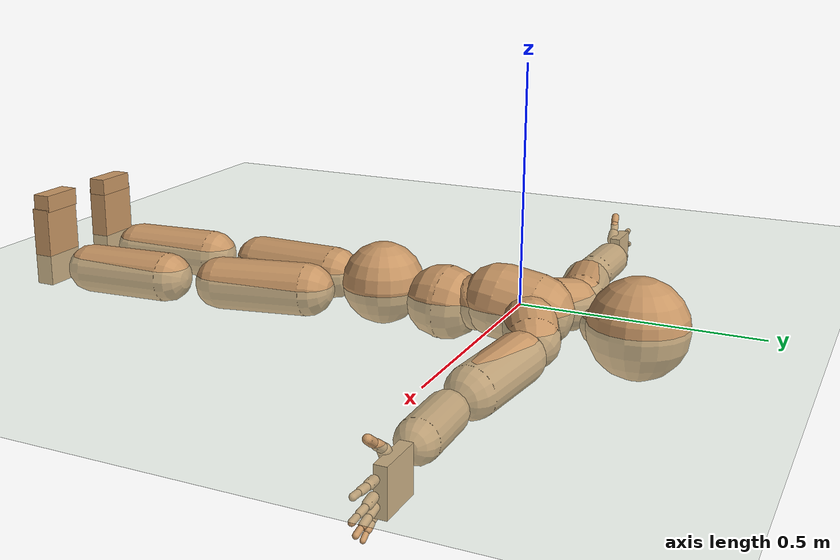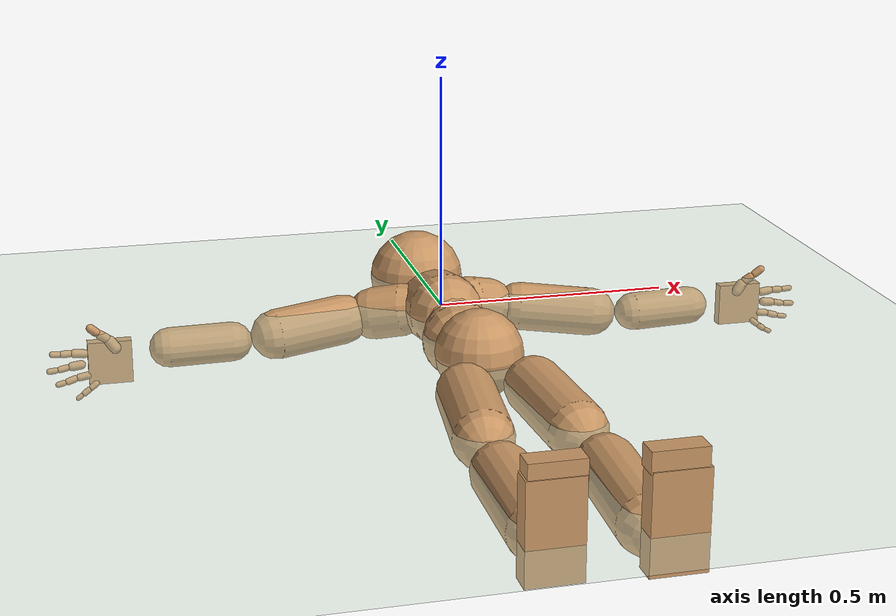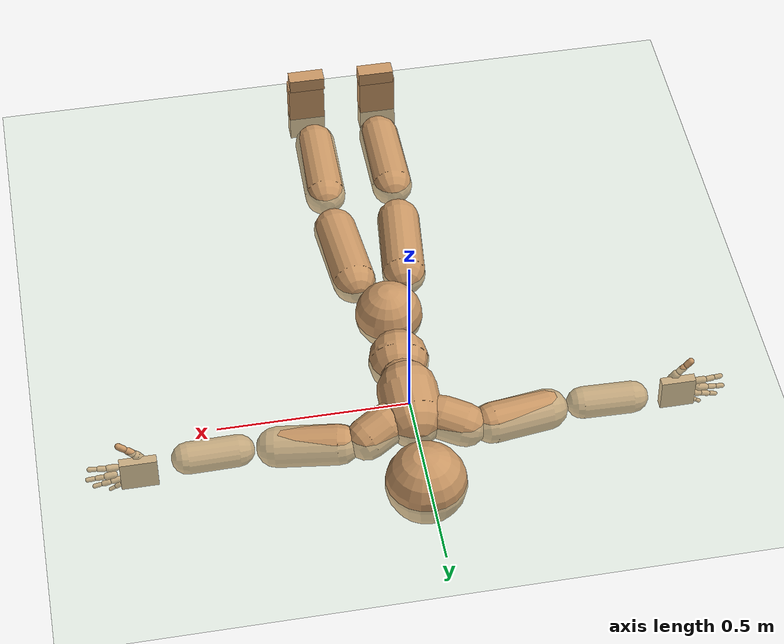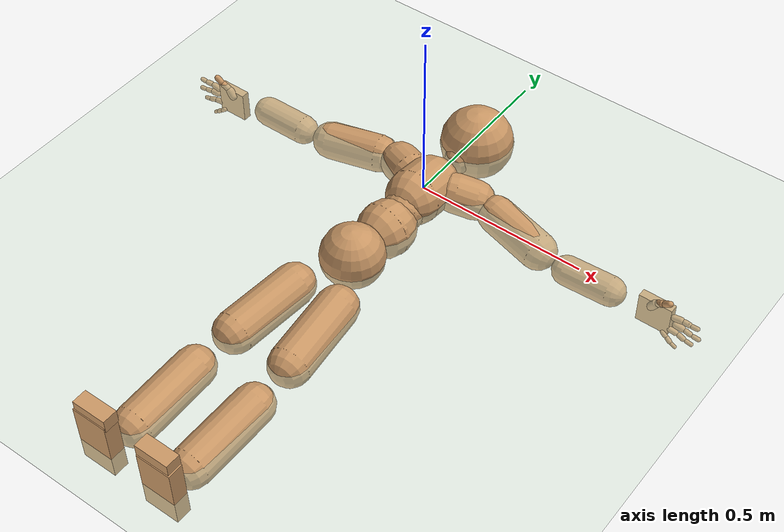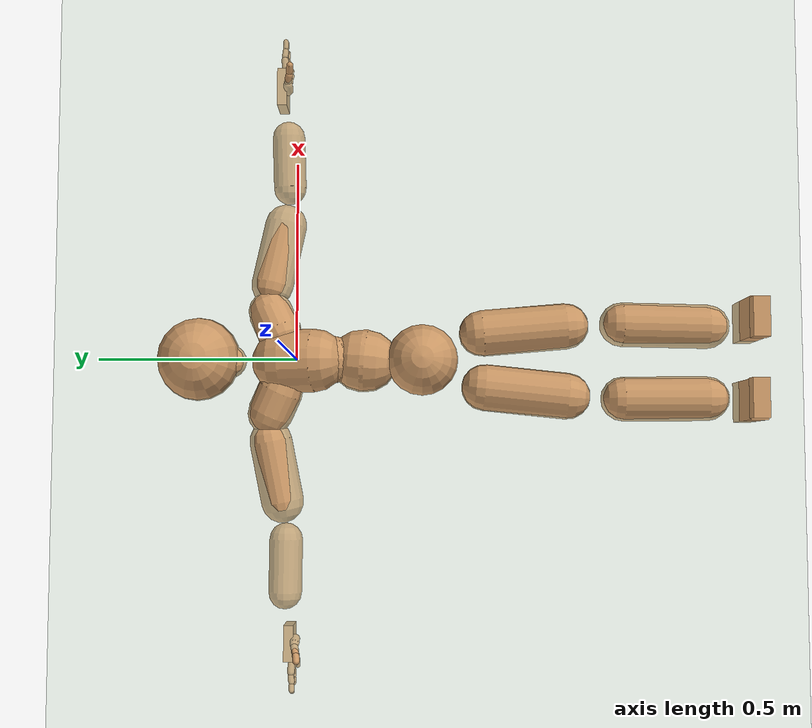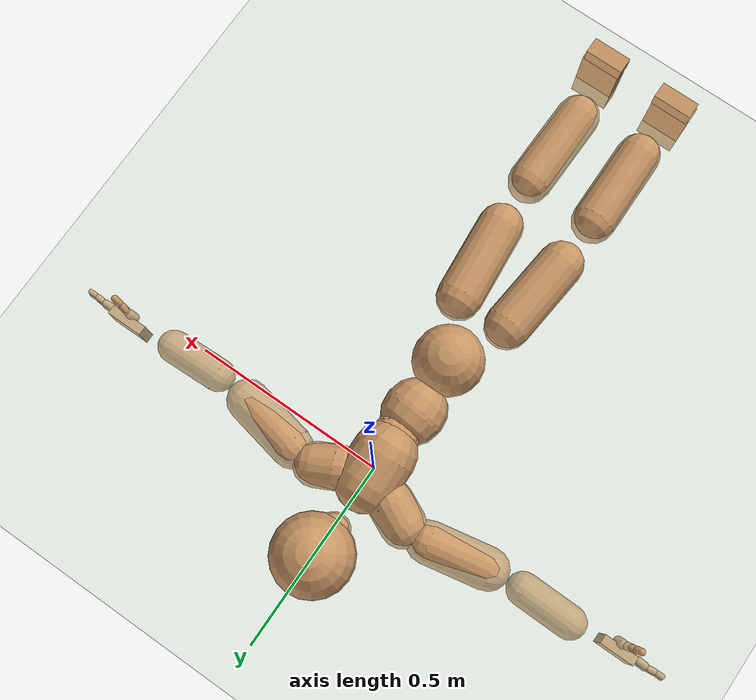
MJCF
<?xml version='1.0' encoding='utf-8'?>
<mujoco model="smplx_mapped_s11">
  <compiler coordinate="local" />
  <default>
    <joint damping="0.0" armature="0.01" stiffness="0.0" limited="true" />
    <geom conaffinity="1" condim="3" contype="7" margin="0.001" rgba="0.8 0.6 .4 1" />
  </default>
  <asset>
    <texture type="skybox" builtin="gradient" rgb1=".4 .5 .6" rgb2="0 0 0" width="100" height="100" />
    <texture builtin="flat" height="1278" mark="cross" markrgb="1 1 1" name="texgeom" random="0.01" rgb1="0.8 0.6 0.4" rgb2="0.8 0.6 0.4" type="cube" width="127" />
    <texture builtin="checker" height="100" name="texplane" rgb1="0 0 0" rgb2="0.8 0.8 0.8" type="2d" width="100" />
    <material name="MatPlane" reflectance="0.5" shininess="1" specular="1" texrepeat="60 60" texture="texplane" />
    <material name="geom" texture="texgeom" texuniform="true" />
  </asset>
  <worldbody>
    <light cutoff="100" diffuse="1 1 1" dir="-0 0 -1.3" directional="true" exponent="1" pos="0 0 1.3" specular=".1 .1 .1" />
    <geom conaffinity="1" condim="3" name="floor" pos="0 0 0" rgba="0.8 0.9 0.8 1" size="100 100 .2" type="plane" material="MatPlane" />
    <body name="Pelvis" pos="0.0005 -0.3159 0.0040">
      <freejoint name="Pelvis" />
      <geom type="sphere" contype="1" conaffinity="1" density="4629.6296296296305" size="0.09" pos="0.0000 0.0000 0.0000" name="Pelvis" />
      <body name="L_Hip" pos="0.0625 -0.0808 -0.0157">
        <joint name="L_Hip_x" type="hinge" pos="0 0 0" axis="1 0 0" stiffness="800" damping="80" armature="0.02" range="-150.00 150.00" />
        <joint name="L_Hip_y" type="hinge" pos="0 0 0" axis="0 1 0" stiffness="800" damping="80" armature="0.02" range="-150.00 150.00" />
        <joint name="L_Hip_z" type="hinge" pos="0 0 0" axis="0 0 1" stiffness="800" damping="80" armature="0.02" range="-150.00 150.00" />
        <geom type="capsule" contype="1" conaffinity="1" density="2040.816327" fromto="0.0064 -0.0707 -0.0028 0.0255 -0.2830 -0.0111" size="0.059" />
        <body name="L_Knee" pos="0.0319 -0.3537 -0.0139">
          <joint name="L_Knee_x" type="hinge" pos="0 0 0" axis="1 0 0" stiffness="800" damping="80" armature="0.02" range="-150.00 150.00" />
          <joint name="L_Knee_y" type="hinge" pos="0 0 0" axis="0 1 0" stiffness="800" damping="80" armature="0.02" range="-150.00 150.00" />
          <joint name="L_Knee_z" type="hinge" pos="0 0 0" axis="0 0 1" stiffness="800" damping="80" armature="0.02" range="-150.00 150.00" />
          <geom type="capsule" contype="1" conaffinity="1" density="1234.567901" fromto="-0.0014 -0.0732 -0.0026 -0.0055 -0.2928 -0.0104" size="0.0564" />
          <body name="L_Ankle" pos="-0.0069 -0.3660 -0.0130">
            <joint name="L_Ankle_x" type="hinge" pos="0 0 0" axis="1 0 0" stiffness="800" damping="80" armature="0.02" range="-150.00 150.00" />
            <joint name="L_Ankle_y" type="hinge" pos="0 0 0" axis="0 1 0" stiffness="800" damping="80" armature="0.02" range="-150.00 150.00" />
            <joint name="L_Ankle_z" type="hinge" pos="0 0 0" axis="0 0 1" stiffness="800" damping="80" armature="0.02" range="-150.00 150.00" />
            <geom type="box" contype="1" conaffinity="1" density="1000" pos="0.0115 -0.0234 0.0566" size="0.0502 0.0216 0.0909" quat="1.0000 0.0000 0.0000 0.0000" />
            <body name="L_Toe" pos="0.0199 -0.0440 0.1046">
              <joint name="L_Toe_x" type="hinge" pos="0 0 0" axis="1 0 0" stiffness="500" damping="50" armature="0.02" range="-150.00 150.00" />
              <joint name="L_Toe_y" type="hinge" pos="0 0 0" axis="0 1 0" stiffness="500" damping="50" armature="0.02" range="-150.00 150.00" />
              <joint name="L_Toe_z" type="hinge" pos="0 0 0" axis="0 0 1" stiffness="500" damping="50" armature="0.02" range="-150.00 150.00" />
              <geom type="box" contype="1" conaffinity="1" density="1000" pos="-0.0115 0.0227 0.0576" size="0.0493 0.0209 0.0194" quat="1.0000 0.0000 0.0000 0.0000" />
            </body>
          </body>
        </body>
      </body>
      <body name="R_Hip" pos="-0.0616 -0.0873 -0.0170">
        <joint name="R_Hip_x" type="hinge" pos="0 0 0" axis="1 0 0" stiffness="800" damping="80" armature="0.02" range="-150.00 150.00" />
        <joint name="R_Hip_y" type="hinge" pos="0 0 0" axis="0 1 0" stiffness="800" damping="80" armature="0.02" range="-150.00 150.00" />
        <joint name="R_Hip_z" type="hinge" pos="0 0 0" axis="0 0 1" stiffness="800" damping="80" armature="0.02" range="-150.00 150.00" />
        <geom type="capsule" contype="1" conaffinity="1" density="2040.816327" fromto="-0.0072 -0.0699 -0.0017 -0.0286 -0.2795 -0.0068" size="0.0588" />
        <body name="R_Knee" pos="-0.0358 -0.3494 -0.0084">
          <joint name="R_Knee_x" type="hinge" pos="0 0 0" axis="1 0 0" stiffness="800" damping="80" armature="0.02" range="-150.00 150.00" />
          <joint name="R_Knee_y" type="hinge" pos="0 0 0" axis="0 1 0" stiffness="800" damping="80" armature="0.02" range="-150.00 150.00" />
          <joint name="R_Knee_z" type="hinge" pos="0 0 0" axis="0 0 1" stiffness="800" damping="80" armature="0.02" range="-150.00 150.00" />
          <geom type="capsule" contype="1" conaffinity="1" density="1234.567901" fromto="0.0004 -0.0716 -0.0018 0.0018 -0.2862 -0.0070" size="0.0564" />
          <body name="R_Ankle" pos="0.0022 -0.3578 -0.0088">
            <joint name="R_Ankle_x" type="hinge" pos="0 0 0" axis="1 0 0" stiffness="800" damping="80" armature="0.02" range="-150.00 150.00" />
            <joint name="R_Ankle_y" type="hinge" pos="0 0 0" axis="0 1 0" stiffness="800" damping="80" armature="0.02" range="-150.00 150.00" />
            <joint name="R_Ankle_z" type="hinge" pos="0 0 0" axis="0 0 1" stiffness="800" damping="80" armature="0.02" range="-150.00 150.00" />
            <geom type="box" contype="1" conaffinity="1" density="1000" pos="-0.0091 -0.0250 0.0535" size="0.0502 0.0216 0.0909" quat="1.0000 0.0000 0.0000 0.0000" />
            <body name="R_Toe" pos="-0.0157 -0.0474 0.0982">
              <joint name="R_Toe_x" type="hinge" pos="0 0 0" axis="1 0 0" stiffness="500" damping="50" armature="0.02" range="-150.00 150.00" />
              <joint name="R_Toe_y" type="hinge" pos="0 0 0" axis="0 1 0" stiffness="500" damping="50" armature="0.02" range="-150.00 150.00" />
              <joint name="R_Toe_z" type="hinge" pos="0 0 0" axis="0 0 1" stiffness="500" damping="50" armature="0.02" range="-150.00 150.00" />
              <geom type="box" contype="1" conaffinity="1" density="1000" pos="0.0091 0.0243 0.0545" size="0.0493 0.0209 0.0194" quat="1.0000 0.0000 0.0000 0.0000" />
            </body>
          </body>
        </body>
      </body>
      <body name="Torso" pos="-0.0050 0.0918 -0.0210">
        <joint name="Torso_x" type="hinge" pos="0 0 0" axis="1 0 0" stiffness="1000" damping="100" armature="0.02" range="-150.00 150.00" />
        <joint name="Torso_y" type="hinge" pos="0 0 0" axis="0 1 0" stiffness="1000" damping="100" armature="0.02" range="-150.00 150.00" />
        <joint name="Torso_z" type="hinge" pos="0 0 0" axis="0 0 1" stiffness="1000" damping="100" armature="0.02" range="-150.00 150.00" />
        <geom type="capsule" contype="1" conaffinity="1" density="1100" fromto="0.0039 0.0502 -0.0021 0.0048 0.0613 -0.0026" size="0.08" />
        <body name="Spine" pos="0.0087 0.1115 -0.0047">
          <joint name="Spine_x" type="hinge" pos="0 0 0" axis="1 0 0" stiffness="1000" damping="100" armature="0.02" range="-150.00 150.00" />
          <joint name="Spine_y" type="hinge" pos="0 0 0" axis="0 1 0" stiffness="1000" damping="100" armature="0.02" range="-150.00 150.00" />
          <joint name="Spine_z" type="hinge" pos="0 0 0" axis="0 0 1" stiffness="1000" damping="100" armature="0.02" range="-150.00 150.00" />
          <geom type="capsule" contype="1" conaffinity="1" density="1100" fromto="-0.0021 0.0191 0.0124 -0.0025 0.0233 0.0152" size="0.06" />
          <body name="Chest" pos="-0.0046 0.0424 0.0276">
            <joint name="Chest_x" type="hinge" pos="0 0 0" axis="1 0 0" stiffness="1000" damping="100" armature="0.02" range="-150.00 150.00" />
            <joint name="Chest_y" type="hinge" pos="0 0 0" axis="0 1 0" stiffness="1000" damping="100" armature="0.02" range="-150.00 150.00" />
            <joint name="Chest_z" type="hinge" pos="0 0 0" axis="0 0 1" stiffness="1000" damping="100" armature="0.02" range="-150.00 150.00" />
            <geom type="capsule" contype="1" conaffinity="1" density="1100" fromto="-0.0005 0.0262 -0.0045 -0.0022 0.1048 -0.0181" size="0.08" />
            <body name="Neck" pos="-0.0056 0.1814 -0.0345">
              <joint name="Neck_x" type="hinge" pos="0 0 0" axis="1 0 0" stiffness="500" damping="50" armature="0.02" range="-150.00 150.00" />
              <joint name="Neck_y" type="hinge" pos="0 0 0" axis="0 1 0" stiffness="500" damping="50" armature="0.02" range="-150.00 150.00" />
              <joint name="Neck_z" type="hinge" pos="0 0 0" axis="0 0 1" stiffness="500" damping="50" armature="0.02" range="-150.00 150.00" />
              <geom type="capsule" contype="1" conaffinity="1" density="1000" fromto="0.0040 0.0627 0.0068 0.0049 0.0766 0.0083" size="0.0437" />
              <body name="Head" pos="0.0089 0.1393 0.0151">
                <joint name="Head_x" type="hinge" pos="0 0 0" axis="1 0 0" stiffness="500" damping="50" armature="0.02" range="-150.00 150.00" />
                <joint name="Head_y" type="hinge" pos="0 0 0" axis="0 1 0" stiffness="500" damping="50" armature="0.02" range="-150.00 150.00" />
                <joint name="Head_z" type="hinge" pos="0 0 0" axis="0 0 1" stiffness="500" damping="50" armature="0.02" range="-150.00 150.00" />
                <geom type="sphere" contype="1" conaffinity="1" density="1000" size="0.1054" pos="0.0000 0.0000 0.0000" name="Head" />
              </body>
            </body>
            <body name="L_Thorax" pos="0.0520 0.1076 -0.0138">
              <joint name="L_Thorax_x" type="hinge" pos="0 0 0" axis="1 0 0" stiffness="500" damping="50" armature="0.02" range="-150.00 150.00" />
              <joint name="L_Thorax_y" type="hinge" pos="0 0 0" axis="0 1 0" stiffness="500" damping="50" armature="0.02" range="-150.00 150.00" />
              <joint name="L_Thorax_z" type="hinge" pos="0 0 0" axis="0 0 1" stiffness="500" damping="50" armature="0.02" range="-150.00 150.00" />
              <geom type="capsule" contype="1" conaffinity="1" density="1000" fromto="0.0180 0.0084 -0.0054 0.0721 0.0337 -0.0217" size="0.0564" />
              <body name="L_Shoulder" pos="0.0902 0.0421 -0.0271">
                <joint name="L_Shoulder_x" type="hinge" pos="0 0 0" axis="1 0 0" stiffness="500" damping="50" armature="0.02" range="-150.00 150.00" />
                <joint name="L_Shoulder_y" type="hinge" pos="0 0 0" axis="0 1 0" stiffness="500" damping="50" armature="0.02" range="-150.00 150.00" />
                <joint name="L_Shoulder_z" type="hinge" pos="0 0 0" axis="0 0 1" stiffness="500" damping="50" armature="0.02" range="-150.00 150.00" />
                <geom type="capsule" contype="1" conaffinity="1" density="1000" fromto="0.0531 -0.0109 -0.0052 0.2122 -0.0437 -0.0208" size="0.0533" />
                <body name="L_Elbow" pos="0.2653 -0.0546 -0.0260">
                  <joint name="L_Elbow_x" type="hinge" pos="0 0 0" axis="1 0 0" stiffness="500" damping="50" armature="0.02" range="-150.00 150.00" />
                  <joint name="L_Elbow_y" type="hinge" pos="0 0 0" axis="0 1 0" stiffness="500" damping="50" armature="0.02" range="-150.00 150.00" />
                  <joint name="L_Elbow_z" type="hinge" pos="0 0 0" axis="0 0 1" stiffness="500" damping="50" armature="0.02" range="-150.00 150.00" />
                  <geom type="capsule" contype="1" conaffinity="1" density="1000" fromto="0.0443 0.0015 0.0010 0.1771 0.0059 0.0040" size="0.0418" />
                  <body name="L_Wrist" pos="0.252 0.0232 -0.0025">
                    <joint name="L_Wrist_x" type="hinge" pos="0 0 0" axis="1 0 0" stiffness="300" damping="30" armature="0.02" range="-180.0000 180.0000"/>
                    <joint name="L_Wrist_y" type="hinge" pos="0 0 0" axis="0 1 0" stiffness="300" damping="30" armature="0.02" range="-180.0000 180.0000"/>
                    <joint name="L_Wrist_z" type="hinge" pos="0 0 0" axis="0 0 1" stiffness="300" damping="30" armature="0.02" range="-180.0000 180.0000"/>
                    <geom type="box" density="1198.335972" pos="0.0523 -0.0013 -0.0031" size="0.0484 0.0122 0.046" quat="1.0000 0.0000 0.0000 0.0000" name="L_Wrist"/>
                    <body name="L_Index1" pos="0.1019 -0.0087 0.0194">
                      <joint name="L_Index1_x" type="hinge" pos="0 0 0" axis="1 0 0" stiffness="100" damping="10" armature="0.02" range="-5.6250 5.6250"/>
                      <joint name="L_Index1_y" type="hinge" pos="0 0 0" axis="0 1 0" stiffness="100" damping="10" armature="0.02" range="-5.6250 5.6250"/>
                      <joint name="L_Index1_z" type="hinge" pos="0 0 0" axis="0 0 1" stiffness="100" damping="10" armature="0.02" range="-55.6250 55.6250"/>
                      <geom type="capsule" contype="1" conaffinity="1" density="1000" fromto="0.0064 0.0004 0.0006 0.0256 0.0018 0.0024" size="0.0091" name="L_Index1"/>
                      <body name="L_Index2" pos="0.0319 0.0022 0.003">
                        <joint name="L_Index2_x" type="hinge" pos="0 0 0" axis="1 0 0" stiffness="100" damping="10" armature="0.02" range="-5.6250 5.6250"/>
                        <joint name="L_Index2_y" type="hinge" pos="0 0 0" axis="0 1 0" stiffness="100" damping="10" armature="0.02" range="-5.6250 5.6250"/>
                        <joint name="L_Index2_z" type="hinge" pos="0 0 0" axis="0 0 1" stiffness="100" damping="10" armature="0.02" range="-55.6250 55.6250"/>
                        <geom type="capsule" contype="1" conaffinity="1" density="1000" fromto="0.0045 -0.0005 0.0000 0.0180 -0.0019 0.0000" size="0.0076" name="L_Index2"/>
                        <body name="L_Index3" pos="0.0225 -0.0024 0.0001">
                          <joint name="L_Index3_x" type="hinge" pos="0 0 0" axis="1 0 0" stiffness="100" damping="10" armature="0.02" range="-5.6250 5.6250"/>
                          <joint name="L_Index3_y" type="hinge" pos="0 0 0" axis="0 1 0" stiffness="100" damping="10" armature="0.02" range="-5.6250 5.6250"/>
                          <joint name="L_Index3_z" type="hinge" pos="0 0 0" axis="0 0 1" stiffness="100" damping="10" armature="0.02" range="-90.0000 5.6250"/>
                          <geom type="capsule" contype="1" conaffinity="1" density="1000" fromto="0.0049 -0.0001 0.0004 0.0196 -0.0003 0.0016" size="0.0064" name="L_Index3"/>
                        </body>
                      </body>
                    </body>
                    <body name="L_Middle1" pos="0.1094 -0.0063 -0.004">
                      <joint name="L_Middle1_x" type="hinge" pos="0 0 0" axis="1 0 0" stiffness="100" damping="10" armature="0.02" range="-5.6250 5.6250"/>
                      <joint name="L_Middle1_y" type="hinge" pos="0 0 0" axis="0 1 0" stiffness="100" damping="10" armature="0.02" range="-5.6250 5.6250"/>
                      <joint name="L_Middle1_z" type="hinge" pos="0 0 0" axis="0 0 1" stiffness="100" damping="10" armature="0.02" range="-55.6250 55.6250"/>
                      <geom type="capsule" contype="1" conaffinity="1" density="1000" fromto="0.0061 0.0002 -0.0008 0.0245 0.0006 -0.0032" size="0.0094" name="L_Middle1"/>
                      <body name="L_Middle2" pos="0.0306 0.0008 -0.004">
                        <joint name="L_Middle2_x" type="hinge" pos="0 0 0" axis="1 0 0" stiffness="100" damping="10" armature="0.02" range="-5.6250 5.6250"/>
                        <joint name="L_Middle2_y" type="hinge" pos="0 0 0" axis="0 1 0" stiffness="100" damping="10" armature="0.02" range="-5.6250 5.6250"/>
                        <joint name="L_Middle2_z" type="hinge" pos="0 0 0" axis="0 0 1" stiffness="100" damping="10" armature="0.02" range="-55.6250 55.6250"/>
                        <geom type="capsule" contype="1" conaffinity="1" density="1000" fromto="0.0047 -0.0004 -0.0008 0.0188 -0.0016 -0.0033" size="0.007" name="L_Middle2"/>
                        <body name="L_Middle3" pos="0.0235 -0.002 -0.0041">
                          <joint name="L_Middle3_x" type="hinge" pos="0 0 0" axis="1 0 0" stiffness="100" damping="10" armature="0.02" range="-5.6250 5.6250"/>
                          <joint name="L_Middle3_y" type="hinge" pos="0 0 0" axis="0 1 0" stiffness="100" damping="10" armature="0.02" range="-5.6250 5.6250"/>
                          <joint name="L_Middle3_z" type="hinge" pos="0 0 0" axis="0 0 1" stiffness="100" damping="10" armature="0.02" range="-90.0000 5.6250"/>
                          <geom type="capsule" contype="1" conaffinity="1" density="1000" fromto="0.0051 -0.0000 -0.0004 0.0204 -0.0000 -0.0017" size="0.0061" name="L_Middle3"/>
                        </body>
                      </body>
                    </body>
                    <body name="L_Pinky1" pos="0.084 -0.0145 -0.0437">
                      <joint name="L_Pinky1_x" type="hinge" pos="0 0 0" axis="1 0 0" stiffness="100" damping="10" armature="0.02" range="-5.6250 5.6250"/>
                      <joint name="L_Pinky1_y" type="hinge" pos="0 0 0" axis="0 1 0" stiffness="100" damping="10" armature="0.02" range="-5.6250 5.6250"/>
                      <joint name="L_Pinky1_z" type="hinge" pos="0 0 0" axis="0 0 1" stiffness="100" damping="10" armature="0.02" range="-55.6250 55.6250"/>
                      <geom type="capsule" contype="1" conaffinity="1" density="1000" fromto="0.0031 -0.0002 -0.0024 0.0124 -0.0009 -0.0096" size="0.0067" name="L_Pinky1"/>
                      <body name="L_Pinky2" pos="0.0155 -0.0011 -0.012">
                        <joint name="L_Pinky2_x" type="hinge" pos="0 0 0" axis="1 0 0" stiffness="100" damping="10" armature="0.02" range="-5.6250 5.6250"/>
                        <joint name="L_Pinky2_y" type="hinge" pos="0 0 0" axis="0 1 0" stiffness="100" damping="10" armature="0.02" range="-5.6250 5.6250"/>
                        <joint name="L_Pinky2_z" type="hinge" pos="0 0 0" axis="0 0 1" stiffness="100" damping="10" armature="0.02" range="-55.6250 55.6250"/>
                        <geom type="capsule" contype="1" conaffinity="1" density="1000" fromto="0.0031 -0.0003 -0.0022 0.0124 -0.0013 -0.0090" size="0.0065" name="L_Pinky2"/>
                        <body name="L_Pinky3" pos="0.0155 -0.0017 -0.0112">
                          <joint name="L_Pinky3_x" type="hinge" pos="0 0 0" axis="1 0 0" stiffness="100" damping="10" armature="0.02" range="-5.6250 5.6250"/>
                          <joint name="L_Pinky3_y" type="hinge" pos="0 0 0" axis="0 1 0" stiffness="100" damping="10" armature="0.02" range="-5.6250 5.6250"/>
                          <joint name="L_Pinky3_z" type="hinge" pos="0 0 0" axis="0 0 1" stiffness="100" damping="10" armature="0.02" range="-90.0000 5.6250"/>
                          <geom type="capsule" contype="1" conaffinity="1" density="1000" fromto="0.0035 0.0001 -0.0018 0.0140 0.0003 -0.0074" size="0.005" name="L_Pinky3"/>
                        </body>
                      </body>
                    </body>
                    <body name="L_Ring1" pos="0.0974 -0.0093 -0.0273">
                      <joint name="L_Ring1_x" type="hinge" pos="0 0 0" axis="1 0 0" stiffness="100" damping="10" armature="0.02" range="-5.6250 5.6250"/>
                      <joint name="L_Ring1_y" type="hinge" pos="0 0 0" axis="0 1 0" stiffness="100" damping="10" armature="0.02" range="-5.6250 5.6250"/>
                      <joint name="L_Ring1_z" type="hinge" pos="0 0 0" axis="0 0 1" stiffness="100" damping="10" armature="0.02" range="-55.6250 55.6250"/>
                      <geom type="capsule" contype="1" conaffinity="1" density="1000" fromto="0.0056 0.0003 -0.0011 0.0224 0.0012 -0.0042" size="0.008" name="L_Ring1"/>
                      <body name="L_Ring2" pos="0.028 0.0015 -0.0053">
                        <joint name="L_Ring2_x" type="hinge" pos="0 0 0" axis="1 0 0" stiffness="100" damping="10" armature="0.02" range="-5.6250 5.6250"/>
                        <joint name="L_Ring2_y" type="hinge" pos="0 0 0" axis="0 1 0" stiffness="100" damping="10" armature="0.02" range="-5.6250 5.6250"/>
                        <joint name="L_Ring2_z" type="hinge" pos="0 0 0" axis="0 0 1" stiffness="100" damping="10" armature="0.02" range="-55.6250 55.6250"/>
                        <geom type="capsule" contype="1" conaffinity="1" density="1000" fromto="0.0046 -0.0003 -0.0014 0.0183 -0.0012 -0.0057" size="0.0074" name="L_Ring2"/>
                        <body name="L_Ring3" pos="0.0228 -0.0015 -0.0071">
                          <joint name="L_Ring3_x" type="hinge" pos="0 0 0" axis="1 0 0" stiffness="100" damping="10" armature="0.02" range="-5.6250 5.6250"/>
                          <joint name="L_Ring3_y" type="hinge" pos="0 0 0" axis="0 1 0" stiffness="100" damping="10" armature="0.02" range="-5.6250 5.6250"/>
                          <joint name="L_Ring3_z" type="hinge" pos="0 0 0" axis="0 0 1" stiffness="100" damping="10" armature="0.02" range="-90.0000 5.6250"/>
                          <geom type="capsule" contype="1" conaffinity="1" density="1000" fromto="0.0050 0.0001 -0.0010 0.0199 0.0004 -0.0041" size="0.0057" name="L_Ring3"/>
                        </body>
                      </body>
                    </body>
                    <body name="L_Thumb1" pos="0.0406 -0.018 0.0256">
                      <joint name="L_Thumb1_x" type="hinge" pos="0 0 0" axis="1 0 0" stiffness="100" damping="10" armature="0.02" range="-55.6250 55.6250"/>
                      <joint name="L_Thumb1_y" type="hinge" pos="0 0 0" axis="0 1 0" stiffness="100" damping="10" armature="0.02" range="-55.6250 55.6250"/>
                      <joint name="L_Thumb1_z" type="hinge" pos="0 0 0" axis="0 0 1" stiffness="100" damping="10" armature="0.02" range="-55.6250 55.6250"/>
                      <geom type="capsule" contype="1" conaffinity="1" density="1000" fromto="0.0034 0.0002 0.0050 0.0136 0.0008 0.0200" size="0.012" name="L_Thumb1"/>
                      <body name="L_Thumb2" pos="0.017 0.001 0.025">
                        <joint name="L_Thumb2_x" type="hinge" pos="0 0 0" axis="1 0 0" stiffness="100" damping="10" armature="0.02" range="-5.6250 5.6250"/>
                        <joint name="L_Thumb2_y" type="hinge" pos="0 0 0" axis="0 1 0" stiffness="100" damping="10" armature="0.02" range="-5.6250 5.6250"/>
                        <joint name="L_Thumb2_z" type="hinge" pos="0 0 0" axis="0 0 1" stiffness="100" damping="10" armature="0.02" range="-5.6250 5.6250"/>
                        <geom type="capsule" contype="1" conaffinity="1" density="1000" fromto="0.0041 -0.0010 0.0031 0.0164 -0.0041 0.0124" size="0.0095" name="L_Thumb2"/>
                        <body name="L_Thumb3" pos="0.0205 -0.0052 0.0155">
                          <joint name="L_Thumb3_x" type="hinge" pos="0 0 0" axis="1 0 0" stiffness="100" damping="10" armature="0.02" range="-5.6250 5.6250"/>
                          <joint name="L_Thumb3_y" type="hinge" pos="0 0 0" axis="0 1 0" stiffness="100" damping="10" armature="0.02" range="-5.6250 5.6250"/>
                          <joint name="L_Thumb3_z" type="hinge" pos="0 0 0" axis="0 0 1" stiffness="100" damping="10" armature="0.02" range="-90.0000 5.6250"/>
                          <geom type="capsule" contype="1" conaffinity="1" density="1000" fromto="0.0045 -0.0006 0.0035 0.0180 -0.0025 0.0140" size="0.0087" name="L_Thumb3"/>
                        </body>
                      </body>
                    </body>
                  </body>
                </body>
              </body>
            </body>
            <body name="R_Thorax" pos="-0.0545 0.1038 -0.0197">
              <joint name="R_Thorax_x" type="hinge" pos="0 0 0" axis="1 0 0" stiffness="500" damping="50" armature="0.02" range="-150.00 150.00" />
              <joint name="R_Thorax_y" type="hinge" pos="0 0 0" axis="0 1 0" stiffness="500" damping="50" armature="0.02" range="-150.00 150.00" />
              <joint name="R_Thorax_z" type="hinge" pos="0 0 0" axis="0 0 1" stiffness="500" damping="50" armature="0.02" range="-150.00 150.00" />
              <geom type="capsule" contype="1" conaffinity="1" density="1000" fromto="-0.0194 0.0090 -0.0041 -0.0777 0.0360 -0.0166" size="0.0576" />
              <body name="R_Shoulder" pos="-0.0972 0.0450 -0.0207">
                <joint name="R_Shoulder_x" type="hinge" pos="0 0 0" axis="1 0 0" stiffness="500" damping="50" armature="0.02" range="-150.00 150.00" />
                <joint name="R_Shoulder_y" type="hinge" pos="0 0 0" axis="0 1 0" stiffness="500" damping="50" armature="0.02" range="-150.00 150.00" />
                <joint name="R_Shoulder_z" type="hinge" pos="0 0 0" axis="0 0 1" stiffness="500" damping="50" armature="0.02" range="-150.00 150.00" />
                <geom type="capsule" contype="1" conaffinity="1" density="1000" fromto="-0.0510 -0.0100 -0.0039 -0.2041 -0.0400 -0.0154" size="0.0538" />
                <body name="R_Elbow" pos="-0.2552 -0.0500 -0.0193">
                  <joint name="R_Elbow_x" type="hinge" pos="0 0 0" axis="1 0 0" stiffness="500" damping="50" armature="0.02" range="-150.00 150.00" />
                  <joint name="R_Elbow_y" type="hinge" pos="0 0 0" axis="0 1 0" stiffness="500" damping="50" armature="0.02" range="-150.00 150.00" />
                  <joint name="R_Elbow_z" type="hinge" pos="0 0 0" axis="0 0 1" stiffness="500" damping="50" armature="0.02" range="-150.00 150.00" />
                  <geom type="capsule" contype="1" conaffinity="1" density="1000" fromto="-0.0444 0.0006 -0.0007 -0.1778 0.0023 -0.0029" size="0.042" />
                  <body name="R_Wrist" pos="-0.2493 -0.0045 -0.0153">
                    <joint name="R_Wrist_x" type="hinge" pos="0 0 0" axis="1 0 0" stiffness="300" damping="30" armature="0.02" range="-180.0000 180.0000"/>
                    <joint name="R_Wrist_y" type="hinge" pos="0 0 0" axis="0 1 0" stiffness="300" damping="30" armature="0.02" range="-180.0000 180.0000"/>
                    <joint name="R_Wrist_z" type="hinge" pos="0 0 0" axis="0 0 1" stiffness="300" damping="30" armature="0.02" range="-180.0000 180.0000"/>
                    <geom type="box" density="1230.822844" pos="-0.0537 -0.0044 -0.0029" size="0.0454 0.0122 0.046" quat="1.0000 0.0000 0.0000 0.0000" name="R_Wrist"/>
                    <body name="R_Index1" pos="-0.0999 -0.0118 0.0196">
                      <joint name="R_Index1_x" type="hinge" pos="0 0 0" axis="1 0 0" stiffness="100" damping="10" armature="0.02" range="-5.6250 5.6250"/>
                      <joint name="R_Index1_y" type="hinge" pos="0 0 0" axis="0 1 0" stiffness="100" damping="10" armature="0.02" range="-5.6250 5.6250"/>
                      <joint name="R_Index1_z" type="hinge" pos="0 0 0" axis="0 0 1" stiffness="100" damping="10" armature="0.02" range="-55.6250 55.6250"/>
                      <geom type="capsule" contype="1" conaffinity="1" density="1000" fromto="-0.0064 0.0004 0.0006 -0.0256 0.0018 0.0024" size="0.0091" name="R_Index1"/>
                      <body name="R_Index2" pos="-0.0319 0.0022 0.003">
                        <joint name="R_Index2_x" type="hinge" pos="0 0 0" axis="1 0 0" stiffness="100" damping="10" armature="0.02" range="-5.6250 5.6250"/>
                        <joint name="R_Index2_y" type="hinge" pos="0 0 0" axis="0 1 0" stiffness="100" damping="10" armature="0.02" range="-5.6250 5.6250"/>
                        <joint name="R_Index2_z" type="hinge" pos="0 0 0" axis="0 0 1" stiffness="100" damping="10" armature="0.02" range="-55.6250 55.6250"/>
                        <geom type="capsule" contype="1" conaffinity="1" density="1000" fromto="-0.0045 -0.0005 0.0000 -0.0180 -0.0019 0.0000" size="0.0076" name="R_Index2"/>
                        <body name="R_Index3" pos="-0.0225 -0.0023 0.0001">
                          <joint name="R_Index3_x" type="hinge" pos="0 0 0" axis="1 0 0" stiffness="100" damping="10" armature="0.02" range="-5.6250 5.6250"/>
                          <joint name="R_Index3_y" type="hinge" pos="0 0 0" axis="0 1 0" stiffness="100" damping="10" armature="0.02" range="-5.6250 5.6250"/>
                          <joint name="R_Index3_z" type="hinge" pos="0 0 0" axis="0 0 1" stiffness="100" damping="10" armature="0.02" range="-5.6250 90.0000"/>
                          <geom type="capsule" contype="1" conaffinity="1" density="1000" fromto="-0.0041 -0.0001 0.0004 -0.0164 -0.0003 0.0016" size="0.0067" name="R_Index3"/>
                        </body>
                      </body>
                    </body>
                    <body name="R_Middle1" pos="-0.1074 -0.0094 -0.0037">
                      <joint name="R_Middle1_x" type="hinge" pos="0 0 0" axis="1 0 0" stiffness="100" damping="10" armature="0.02" range="-5.6250 5.6250"/>
                      <joint name="R_Middle1_y" type="hinge" pos="0 0 0" axis="0 1 0" stiffness="100" damping="10" armature="0.02" range="-5.6250 5.6250"/>
                      <joint name="R_Middle1_z" type="hinge" pos="0 0 0" axis="0 0 1" stiffness="100" damping="10" armature="0.02" range="-55.6250 55.6250"/>
                      <geom type="capsule" contype="1" conaffinity="1" density="1000" fromto="-0.0061 0.0002 -0.0008 -0.0245 0.0006 -0.0032" size="0.0094" name="R_Middle1"/>
                      <body name="R_Middle2" pos="-0.0306 0.0008 -0.004">
                        <joint name="R_Middle2_x" type="hinge" pos="0 0 0" axis="1 0 0" stiffness="100" damping="10" armature="0.02" range="-5.6250 5.6250"/>
                        <joint name="R_Middle2_y" type="hinge" pos="0 0 0" axis="0 1 0" stiffness="100" damping="10" armature="0.02" range="-5.6250 5.6250"/>
                        <joint name="R_Middle2_z" type="hinge" pos="0 0 0" axis="0 0 1" stiffness="100" damping="10" armature="0.02" range="-55.6250 55.6250"/>
                        <geom type="capsule" contype="1" conaffinity="1" density="1000" fromto="-0.0047 -0.0004 -0.0008 -0.0188 -0.0016 -0.0033" size="0.007" name="R_Middle2"/>
                        <body name="R_Middle3" pos="-0.0235 -0.002 -0.0041">
                          <joint name="R_Middle3_x" type="hinge" pos="0 0 0" axis="1 0 0" stiffness="100" damping="10" armature="0.02" range="-5.6250 5.6250"/>
                          <joint name="R_Middle3_y" type="hinge" pos="0 0 0" axis="0 1 0" stiffness="100" damping="10" armature="0.02" range="-5.6250 5.6250"/>
                          <joint name="R_Middle3_z" type="hinge" pos="0 0 0" axis="0 0 1" stiffness="100" damping="10" armature="0.02" range="-5.6250 90.0000"/>
                          <geom type="capsule" contype="1" conaffinity="1" density="1000" fromto="-0.0043 -0.0000 -0.0004 -0.0172 -0.0000 -0.0017" size="0.0064" name="R_Middle3"/>
                        </body>
                      </body>
                    </body>
                    <body name="R_Pinky1" pos="-0.082 -0.0176 -0.0435">
                      <joint name="R_Pinky1_x" type="hinge" pos="0 0 0" axis="1 0 0" stiffness="100" damping="10" armature="0.02" range="-5.6250 5.6250"/>
                      <joint name="R_Pinky1_y" type="hinge" pos="0 0 0" axis="0 1 0" stiffness="100" damping="10" armature="0.02" range="-5.6250 5.6250"/>
                      <joint name="R_Pinky1_z" type="hinge" pos="0 0 0" axis="0 0 1" stiffness="100" damping="10" armature="0.02" range="-55.6250 55.6250"/>
                      <geom type="capsule" contype="1" conaffinity="1" density="1000" fromto="-0.0031 -0.0002 -0.0024 -0.0124 -0.0009 -0.0096" size="0.0067" name="R_Pinky1"/>
                      <body name="R_Pinky2" pos="-0.0155 -0.0011 -0.012">
                        <joint name="R_Pinky2_x" type="hinge" pos="0 0 0" axis="1 0 0" stiffness="100" damping="10" armature="0.02" range="-5.6250 5.6250"/>
                        <joint name="R_Pinky2_y" type="hinge" pos="0 0 0" axis="0 1 0" stiffness="100" damping="10" armature="0.02" range="-5.6250 5.6250"/>
                        <joint name="R_Pinky2_z" type="hinge" pos="0 0 0" axis="0 0 1" stiffness="100" damping="10" armature="0.02" range="-55.6250 55.6250"/>
                        <geom type="capsule" contype="1" conaffinity="1" density="1000" fromto="-0.0031 -0.0003 -0.0022 -0.0124 -0.0013 -0.0090" size="0.0065" name="R_Pinky2"/>
                        <body name="R_Pinky3" pos="-0.0155 -0.0017 -0.0112">
                          <joint name="R_Pinky3_x" type="hinge" pos="0 0 0" axis="1 0 0" stiffness="100" damping="10" armature="0.02" range="-5.6250 5.6250"/>
                          <joint name="R_Pinky3_y" type="hinge" pos="0 0 0" axis="0 1 0" stiffness="100" damping="10" armature="0.02" range="-5.6250 5.6250"/>
                          <joint name="R_Pinky3_z" type="hinge" pos="0 0 0" axis="0 0 1" stiffness="100" damping="10" armature="0.02" range="-5.6250 90.0000"/>
                          <geom type="capsule" contype="1" conaffinity="1" density="1000" fromto="-0.0027 0.0001 -0.0018 -0.0108 0.0003 -0.0074" size="0.0052" name="R_Pinky3"/>
                        </body>
                      </body>
                    </body>
                    <body name="R_Ring1" pos="-0.0954 -0.0124 -0.0271">
                      <joint name="R_Ring1_x" type="hinge" pos="0 0 0" axis="1 0 0" stiffness="100" damping="10" armature="0.02" range="-5.6250 5.6250"/>
                      <joint name="R_Ring1_y" type="hinge" pos="0 0 0" axis="0 1 0" stiffness="100" damping="10" armature="0.02" range="-5.6250 5.6250"/>
                      <joint name="R_Ring1_z" type="hinge" pos="0 0 0" axis="0 0 1" stiffness="100" damping="10" armature="0.02" range="-55.6250 55.6250"/>
                      <geom type="capsule" contype="1" conaffinity="1" density="1000" fromto="-0.0056 0.0003 -0.0011 -0.0224 0.0012 -0.0042" size="0.008" name="R_Ring1"/>
                      <body name="R_Ring2" pos="-0.028 0.0015 -0.0053">
                        <joint name="R_Ring2_x" type="hinge" pos="0 0 0" axis="1 0 0" stiffness="100" damping="10" armature="0.02" range="-5.6250 5.6250"/>
                        <joint name="R_Ring2_y" type="hinge" pos="0 0 0" axis="0 1 0" stiffness="100" damping="10" armature="0.02" range="-5.6250 5.6250"/>
                        <joint name="R_Ring2_z" type="hinge" pos="0 0 0" axis="0 0 1" stiffness="100" damping="10" armature="0.02" range="-55.6250 55.6250"/>
                        <geom type="capsule" contype="1" conaffinity="1" density="1000" fromto="-0.0046 -0.0003 -0.0014 -0.0183 -0.0012 -0.0057" size="0.0074" name="R_Ring2"/>
                        <body name="R_Ring3" pos="-0.0228 -0.0015 -0.0071">
                          <joint name="R_Ring3_x" type="hinge" pos="0 0 0" axis="1 0 0" stiffness="100" damping="10" armature="0.02" range="-5.6250 5.6250"/>
                          <joint name="R_Ring3_y" type="hinge" pos="0 0 0" axis="0 1 0" stiffness="100" damping="10" armature="0.02" range="-5.6250 5.6250"/>
                          <joint name="R_Ring3_z" type="hinge" pos="0 0 0" axis="0 0 1" stiffness="100" damping="10" armature="0.02" range="-5.6250 90.0000"/>
                          <geom type="capsule" contype="1" conaffinity="1" density="1000" fromto="-0.0042 0.0001 -0.0010 -0.0167 0.0004 -0.0041" size="0.006" name="R_Ring3"/>
                        </body>
                      </body>
                    </body>
                    <body name="R_Thumb1" pos="-0.0386 -0.0211 0.0259">
                      <joint name="R_Thumb1_x" type="hinge" pos="0 0 0" axis="1 0 0" stiffness="100" damping="10" armature="0.02" range="-55.6250 55.6250"/>
                      <joint name="R_Thumb1_y" type="hinge" pos="0 0 0" axis="0 1 0" stiffness="100" damping="10" armature="0.02" range="-55.6250 55.6250"/>
                      <joint name="R_Thumb1_z" type="hinge" pos="0 0 0" axis="0 0 1" stiffness="100" damping="10" armature="0.02" range="-55.6250 55.6250"/>
                      <geom type="capsule" contype="1" conaffinity="1" density="1000" fromto="-0.0034 0.0002 0.0050 -0.0136 0.0008 0.0200" size="0.012" name="R_Thumb1"/>
                      <body name="R_Thumb2" pos="-0.017 0.001 0.025">
                        <joint name="R_Thumb2_x" type="hinge" pos="0 0 0" axis="1 0 0" stiffness="100" damping="10" armature="0.02" range="-5.6250 5.6250"/>
                        <joint name="R_Thumb2_y" type="hinge" pos="0 0 0" axis="0 1 0" stiffness="100" damping="10" armature="0.02" range="-5.6250 5.6250"/>
                        <joint name="R_Thumb2_z" type="hinge" pos="0 0 0" axis="0 0 1" stiffness="100" damping="10" armature="0.02" range="-5.6250 5.6250"/>
                        <geom type="capsule" contype="1" conaffinity="1" density="1000" fromto="-0.0041 -0.0010 0.0031 -0.0164 -0.0041 0.0124" size="0.0095" name="R_Thumb2"/>
                        <body name="R_Thumb3" pos="-0.0205 -0.0052 0.0155">
                          <joint name="R_Thumb3_x" type="hinge" pos="0 0 0" axis="1 0 0" stiffness="100" damping="10" armature="0.02" range="-5.6250 5.6250"/>
                          <joint name="R_Thumb3_y" type="hinge" pos="0 0 0" axis="0 1 0" stiffness="100" damping="10" armature="0.02" range="-5.6250 5.6250"/>
                          <joint name="R_Thumb3_z" type="hinge" pos="0 0 0" axis="0 0 1" stiffness="100" damping="10" armature="0.02" range="-5.6250 90.0000"/>
                          <geom type="capsule" contype="1" conaffinity="1" density="1000" fromto="-0.0037 -0.0006 0.0035 -0.0148 -0.0025 0.0140" size="0.009" name="R_Thumb3"/>
                        </body>
                      </body>
                    </body>
                  </body>
                </body>
              </body>
            </body>
          </body>
        </body>
      </body>
    </body>
  </worldbody>
  <actuator>
    <motor name="L_Hip_x" joint="L_Hip_x" gear="1" />
    <motor name="L_Hip_y" joint="L_Hip_y" gear="1" />
    <motor name="L_Hip_z" joint="L_Hip_z" gear="1" />
    <motor name="L_Knee_x" joint="L_Knee_x" gear="1" />
    <motor name="L_Knee_y" joint="L_Knee_y" gear="1" />
    <motor name="L_Knee_z" joint="L_Knee_z" gear="1" />
    <motor name="L_Ankle_x" joint="L_Ankle_x" gear="1" />
    <motor name="L_Ankle_y" joint="L_Ankle_y" gear="1" />
    <motor name="L_Ankle_z" joint="L_Ankle_z" gear="1" />
    <motor name="L_Toe_x" joint="L_Toe_x" gear="1" />
    <motor name="L_Toe_y" joint="L_Toe_y" gear="1" />
    <motor name="L_Toe_z" joint="L_Toe_z" gear="1" />
    <motor name="R_Hip_x" joint="R_Hip_x" gear="1" />
    <motor name="R_Hip_y" joint="R_Hip_y" gear="1" />
    <motor name="R_Hip_z" joint="R_Hip_z" gear="1" />
    <motor name="R_Knee_x" joint="R_Knee_x" gear="1" />
    <motor name="R_Knee_y" joint="R_Knee_y" gear="1" />
    <motor name="R_Knee_z" joint="R_Knee_z" gear="1" />
    <motor name="R_Ankle_x" joint="R_Ankle_x" gear="1" />
    <motor name="R_Ankle_y" joint="R_Ankle_y" gear="1" />
    <motor name="R_Ankle_z" joint="R_Ankle_z" gear="1" />
    <motor name="R_Toe_x" joint="R_Toe_x" gear="1" />
    <motor name="R_Toe_y" joint="R_Toe_y" gear="1" />
    <motor name="R_Toe_z" joint="R_Toe_z" gear="1" />
    <motor name="Torso_x" joint="Torso_x" gear="1" />
    <motor name="Torso_y" joint="Torso_y" gear="1" />
    <motor name="Torso_z" joint="Torso_z" gear="1" />
    <motor name="Spine_x" joint="Spine_x" gear="1" />
    <motor name="Spine_y" joint="Spine_y" gear="1" />
    <motor name="Spine_z" joint="Spine_z" gear="1" />
    <motor name="Chest_x" joint="Chest_x" gear="1" />
    <motor name="Chest_y" joint="Chest_y" gear="1" />
    <motor name="Chest_z" joint="Chest_z" gear="1" />
    <motor name="Neck_x" joint="Neck_x" gear="1" />
    <motor name="Neck_y" joint="Neck_y" gear="1" />
    <motor name="Neck_z" joint="Neck_z" gear="1" />
    <motor name="Head_x" joint="Head_x" gear="1" />
    <motor name="Head_y" joint="Head_y" gear="1" />
    <motor name="Head_z" joint="Head_z" gear="1" />
    <motor name="L_Thorax_x" joint="L_Thorax_x" gear="1" />
    <motor name="L_Thorax_y" joint="L_Thorax_y" gear="1" />
    <motor name="L_Thorax_z" joint="L_Thorax_z" gear="1" />
    <motor name="L_Shoulder_x" joint="L_Shoulder_x" gear="1" />
    <motor name="L_Shoulder_y" joint="L_Shoulder_y" gear="1" />
    <motor name="L_Shoulder_z" joint="L_Shoulder_z" gear="1" />
    <motor name="L_Elbow_x" joint="L_Elbow_x" gear="1" />
    <motor name="L_Elbow_y" joint="L_Elbow_y" gear="1" />
    <motor name="L_Elbow_z" joint="L_Elbow_z" gear="1" />
    <motor name="L_Wrist_x" joint="L_Wrist_x" gear="1" />
    <motor name="L_Wrist_y" joint="L_Wrist_y" gear="1" />
    <motor name="L_Wrist_z" joint="L_Wrist_z" gear="1" />
    <motor name="L_Index1_x" joint="L_Index1_x" gear="1" />
    <motor name="L_Index1_y" joint="L_Index1_y" gear="1" />
    <motor name="L_Index1_z" joint="L_Index1_z" gear="1" />
    <motor name="L_Index2_x" joint="L_Index2_x" gear="1" />
    <motor name="L_Index2_y" joint="L_Index2_y" gear="1" />
    <motor name="L_Index2_z" joint="L_Index2_z" gear="1" />
    <motor name="L_Index3_x" joint="L_Index3_x" gear="1" />
    <motor name="L_Index3_y" joint="L_Index3_y" gear="1" />
    <motor name="L_Index3_z" joint="L_Index3_z" gear="1" />
    <motor name="L_Middle1_x" joint="L_Middle1_x" gear="1" />
    <motor name="L_Middle1_y" joint="L_Middle1_y" gear="1" />
    <motor name="L_Middle1_z" joint="L_Middle1_z" gear="1" />
    <motor name="L_Middle2_x" joint="L_Middle2_x" gear="1" />
    <motor name="L_Middle2_y" joint="L_Middle2_y" gear="1" />
    <motor name="L_Middle2_z" joint="L_Middle2_z" gear="1" />
    <motor name="L_Middle3_x" joint="L_Middle3_x" gear="1" />
    <motor name="L_Middle3_y" joint="L_Middle3_y" gear="1" />
    <motor name="L_Middle3_z" joint="L_Middle3_z" gear="1" />
    <motor name="L_Pinky1_x" joint="L_Pinky1_x" gear="1" />
    <motor name="L_Pinky1_y" joint="L_Pinky1_y" gear="1" />
    <motor name="L_Pinky1_z" joint="L_Pinky1_z" gear="1" />
    <motor name="L_Pinky2_x" joint="L_Pinky2_x" gear="1" />
    <motor name="L_Pinky2_y" joint="L_Pinky2_y" gear="1" />
    <motor name="L_Pinky2_z" joint="L_Pinky2_z" gear="1" />
    <motor name="L_Pinky3_x" joint="L_Pinky3_x" gear="1" />
    <motor name="L_Pinky3_y" joint="L_Pinky3_y" gear="1" />
    <motor name="L_Pinky3_z" joint="L_Pinky3_z" gear="1" />
    <motor name="L_Ring1_x" joint="L_Ring1_x" gear="1" />
    <motor name="L_Ring1_y" joint="L_Ring1_y" gear="1" />
    <motor name="L_Ring1_z" joint="L_Ring1_z" gear="1" />
    <motor name="L_Ring2_x" joint="L_Ring2_x" gear="1" />
    <motor name="L_Ring2_y" joint="L_Ring2_y" gear="1" />
    <motor name="L_Ring2_z" joint="L_Ring2_z" gear="1" />
    <motor name="L_Ring3_x" joint="L_Ring3_x" gear="1" />
    <motor name="L_Ring3_y" joint="L_Ring3_y" gear="1" />
    <motor name="L_Ring3_z" joint="L_Ring3_z" gear="1" />
    <motor name="L_Thumb1_x" joint="L_Thumb1_x" gear="1" />
    <motor name="L_Thumb1_y" joint="L_Thumb1_y" gear="1" />
    <motor name="L_Thumb1_z" joint="L_Thumb1_z" gear="1" />
    <motor name="L_Thumb2_x" joint="L_Thumb2_x" gear="1" />
    <motor name="L_Thumb2_y" joint="L_Thumb2_y" gear="1" />
    <motor name="L_Thumb2_z" joint="L_Thumb2_z" gear="1" />
    <motor name="L_Thumb3_x" joint="L_Thumb3_x" gear="1" />
    <motor name="L_Thumb3_y" joint="L_Thumb3_y" gear="1" />
    <motor name="L_Thumb3_z" joint="L_Thumb3_z" gear="1" />
    <motor name="R_Thorax_x" joint="R_Thorax_x" gear="1" />
    <motor name="R_Thorax_y" joint="R_Thorax_y" gear="1" />
    <motor name="R_Thorax_z" joint="R_Thorax_z" gear="1" />
    <motor name="R_Shoulder_x" joint="R_Shoulder_x" gear="1" />
    <motor name="R_Shoulder_y" joint="R_Shoulder_y" gear="1" />
    <motor name="R_Shoulder_z" joint="R_Shoulder_z" gear="1" />
    <motor name="R_Elbow_x" joint="R_Elbow_x" gear="1" />
    <motor name="R_Elbow_y" joint="R_Elbow_y" gear="1" />
    <motor name="R_Elbow_z" joint="R_Elbow_z" gear="1" />
    <motor name="R_Wrist_x" joint="R_Wrist_x" gear="1" />
    <motor name="R_Wrist_y" joint="R_Wrist_y" gear="1" />
    <motor name="R_Wrist_z" joint="R_Wrist_z" gear="1" />
    <motor name="R_Index1_x" joint="R_Index1_x" gear="1" />
    <motor name="R_Index1_y" joint="R_Index1_y" gear="1" />
    <motor name="R_Index1_z" joint="R_Index1_z" gear="1" />
    <motor name="R_Index2_x" joint="R_Index2_x" gear="1" />
    <motor name="R_Index2_y" joint="R_Index2_y" gear="1" />
    <motor name="R_Index2_z" joint="R_Index2_z" gear="1" />
    <motor name="R_Index3_x" joint="R_Index3_x" gear="1" />
    <motor name="R_Index3_y" joint="R_Index3_y" gear="1" />
    <motor name="R_Index3_z" joint="R_Index3_z" gear="1" />
    <motor name="R_Middle1_x" joint="R_Middle1_x" gear="1" />
    <motor name="R_Middle1_y" joint="R_Middle1_y" gear="1" />
    <motor name="R_Middle1_z" joint="R_Middle1_z" gear="1" />
    <motor name="R_Middle2_x" joint="R_Middle2_x" gear="1" />
    <motor name="R_Middle2_y" joint="R_Middle2_y" gear="1" />
    <motor name="R_Middle2_z" joint="R_Middle2_z" gear="1" />
    <motor name="R_Middle3_x" joint="R_Middle3_x" gear="1" />
    <motor name="R_Middle3_y" joint="R_Middle3_y" gear="1" />
    <motor name="R_Middle3_z" joint="R_Middle3_z" gear="1" />
    <motor name="R_Pinky1_x" joint="R_Pinky1_x" gear="1" />
    <motor name="R_Pinky1_y" joint="R_Pinky1_y" gear="1" />
    <motor name="R_Pinky1_z" joint="R_Pinky1_z" gear="1" />
    <motor name="R_Pinky2_x" joint="R_Pinky2_x" gear="1" />
    <motor name="R_Pinky2_y" joint="R_Pinky2_y" gear="1" />
    <motor name="R_Pinky2_z" joint="R_Pinky2_z" gear="1" />
    <motor name="R_Pinky3_x" joint="R_Pinky3_x" gear="1" />
    <motor name="R_Pinky3_y" joint="R_Pinky3_y" gear="1" />
    <motor name="R_Pinky3_z" joint="R_Pinky3_z" gear="1" />
    <motor name="R_Ring1_x" joint="R_Ring1_x" gear="1" />
    <motor name="R_Ring1_y" joint="R_Ring1_y" gear="1" />
    <motor name="R_Ring1_z" joint="R_Ring1_z" gear="1" />
    <motor name="R_Ring2_x" joint="R_Ring2_x" gear="1" />
    <motor name="R_Ring2_y" joint="R_Ring2_y" gear="1" />
    <motor name="R_Ring2_z" joint="R_Ring2_z" gear="1" />
    <motor name="R_Ring3_x" joint="R_Ring3_x" gear="1" />
    <motor name="R_Ring3_y" joint="R_Ring3_y" gear="1" />
    <motor name="R_Ring3_z" joint="R_Ring3_z" gear="1" />
    <motor name="R_Thumb1_x" joint="R_Thumb1_x" gear="1" />
    <motor name="R_Thumb1_y" joint="R_Thumb1_y" gear="1" />
    <motor name="R_Thumb1_z" joint="R_Thumb1_z" gear="1" />
    <motor name="R_Thumb2_x" joint="R_Thumb2_x" gear="1" />
    <motor name="R_Thumb2_y" joint="R_Thumb2_y" gear="1" />
    <motor name="R_Thumb2_z" joint="R_Thumb2_z" gear="1" />
    <motor name="R_Thumb3_x" joint="R_Thumb3_x" gear="1" />
    <motor name="R_Thumb3_y" joint="R_Thumb3_y" gear="1" />
    <motor name="R_Thumb3_z" joint="R_Thumb3_z" gear="1" />
  </actuator>
  <contact />
  <sensor />
  <size njmax="700" nconmax="700" />
</mujoco>
